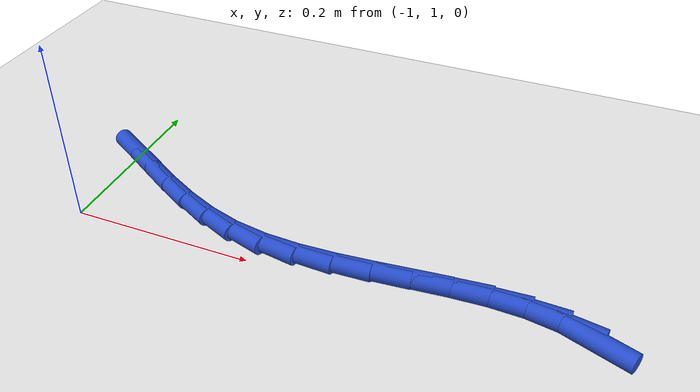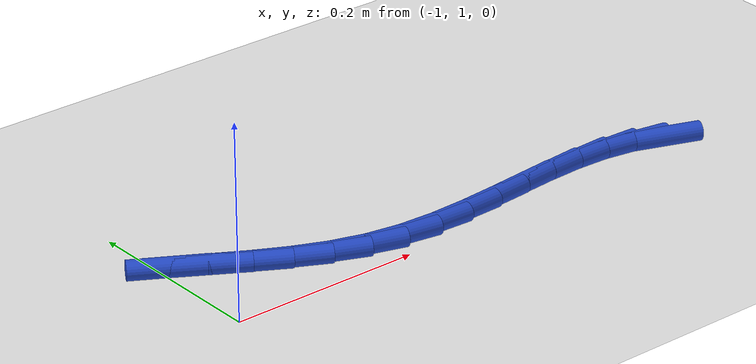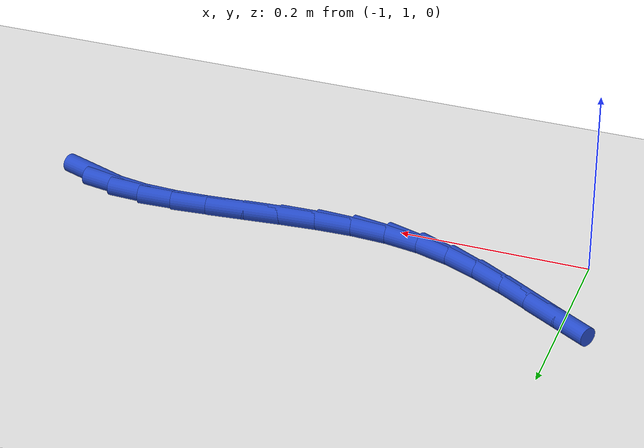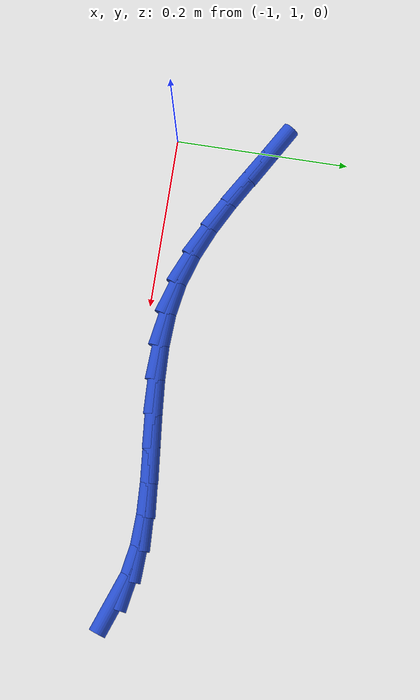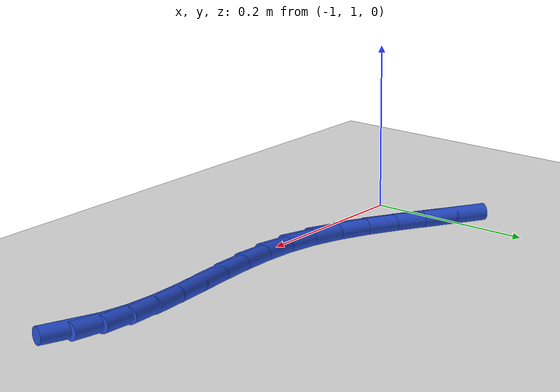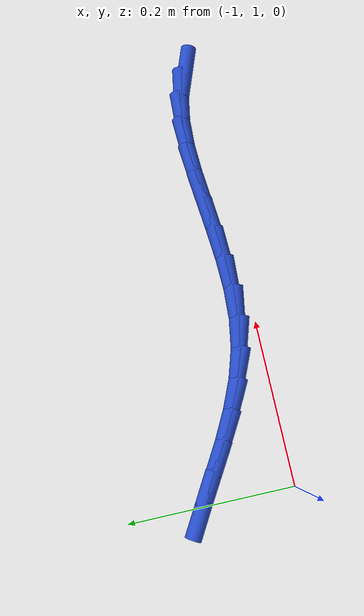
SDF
<sdf version="1.6">
 <world name="default">
  <model name="ground_plane">
   <static>1</static>
   <link name="link">
    <collision name="collision">
     <geometry><plane><normal>0 0 1</normal><size>100 100</size></plane></geometry>
     <surface><friction><ode><mu>100</mu><mu2>50</mu2></ode></friction></surface>
    </collision>
    <visual name="visual">
     <cast_shadows>0</cast_shadows>
     <geometry><plane><normal>0 0 1</normal><size>100 100</size></plane></geometry>
     <material>
      <script><uri>file://media/materials/scripts/gazebo.material</uri><name>Gazebo/WhiteGlow</name></script>
     </material>
    </visual>
   </link>
  </model>
  <model name="line">
   <link name="link_31">
    <pose>-0.46325915484791785 1.0159132641402708 0.01 0 1.57 -0.3467041414615082</pose>
    <collision name="collision">
     <geometry><cylinder><radius>0.01</radius><length>0.08</length></cylinder></geometry>
    </collision>
    <visual name="visual">
     <material>
      <script><name>Gazebo/Blue</name><uri>file://media/materials/scripts/gazebo.material</uri></script>
     </material>
     <geometry><cylinder><radius>0.01</radius><length>0.08</length></cylinder></geometry>
    </visual>
   </link>
   <link name="link_32">
    <pose>-0.4933473817771319 1.0267840788976763 0.01 0 1.57 -0.16493458311249</pose>
    <collision name="collision">
     <geometry><cylinder><radius>0.01</radius><length>0.08</length></cylinder></geometry>
    </collision>
    <visual name="visual">
     <material>
      <script><name>Gazebo/Blue</name><uri>file://media/materials/scripts/gazebo.material</uri></script>
     </material>
     <geometry><cylinder><radius>0.01</radius><length>0.08</length></cylinder></geometry>
    </visual>
   </link>
   <link name="link_33">
    <pose>-0.5262276851728339 1.0322568946947934 0.01 0 1.57 -0.03674275675983046</pose>
    <collision name="collision">
     <geometry><cylinder><radius>0.01</radius><length>0.08</length></cylinder></geometry>
    </collision>
    <visual name="visual">
     <material>
      <script><name>Gazebo/Blue</name><uri>file://media/materials/scripts/gazebo.material</uri></script>
     </material>
     <geometry><cylinder><radius>0.01</radius><length>0.08</length></cylinder></geometry>
    </visual>
   </link>
   <link name="link_34">
    <pose>-0.5613947386432436 1.0335496109741087 0.01 0 1.57 0.045153391238537684</pose>
    <collision name="collision">
     <geometry><cylinder><radius>0.01</radius><length>0.08</length></cylinder></geometry>
    </collision>
    <visual name="visual">
     <material>
      <script><name>Gazebo/Blue</name><uri>file://media/materials/scripts/gazebo.material</uri></script>
     </material>
     <geometry><cylinder><radius>0.01</radius><length>0.08</length></cylinder></geometry>
    </visual>
   </link>
   <link name="link_35">
    <pose>-0.5983432157965802 1.0318801271781077 0.01 0 1.57 0.08907231843675277</pose>
    <collision name="collision">
     <geometry><cylinder><radius>0.01</radius><length>0.08</length></cylinder></geometry>
    </collision>
    <visual name="visual">
     <material>
      <script><name>Gazebo/Blue</name><uri>file://media/materials/scripts/gazebo.material</uri></script>
     </material>
     <geometry><cylinder><radius>0.01</radius><length>0.08</length></cylinder></geometry>
    </visual>
   </link>
   <link name="link_36">
    <pose>-0.6365677902410642 1.0284663427492764 0.01 0 1.57 0.1007006841445614</pose>
    <collision name="collision">
     <geometry><cylinder><radius>0.01</radius><length>0.08</length></cylinder></geometry>
    </collision>
    <visual name="visual">
     <material>
      <script><name>Gazebo/Blue</name><uri>file://media/materials/scripts/gazebo.material</uri></script>
     </material>
     <geometry><cylinder><radius>0.01</radius><length>0.08</length></cylinder></geometry>
    </visual>
   </link>
   <link name="link_37">
    <pose>-0.6755631355849148 1.024526157130101 0.01 0 1.57 0.08255827627250076</pose>
    <collision name="collision">
     <geometry><cylinder><radius>0.01</radius><length>0.08</length></cylinder></geometry>
    </collision>
    <visual name="visual">
     <material>
      <script><name>Gazebo/Blue</name><uri>file://media/materials/scripts/gazebo.material</uri></script>
     </material>
     <geometry><cylinder><radius>0.01</radius><length>0.08</length></cylinder></geometry>
    </visual>
   </link>
   <link name="link_38">
    <pose>-0.7148239254363519 1.0212774697630673 0.01 0 1.57 0.03430889254589658</pose>
    <collision name="collision">
     <geometry><cylinder><radius>0.01</radius><length>0.08</length></cylinder></geometry>
    </collision>
    <visual name="visual">
     <material>
      <script><name>Gazebo/Blue</name><uri>file://media/materials/scripts/gazebo.material</uri></script>
     </material>
     <geometry><cylinder><radius>0.01</radius><length>0.08</length></cylinder></geometry>
    </visual>
   </link>
   <link name="link_39">
    <pose>-0.7538448334035953 1.0199381800906615 0.01 0 1.57 -0.04667997160673434</pose>
    <collision name="collision">
     <geometry><cylinder><radius>0.01</radius><length>0.08</length></cylinder></geometry>
    </collision>
    <visual name="visual">
     <material>
      <script><name>Gazebo/Blue</name><uri>file://media/materials/scripts/gazebo.material</uri></script>
     </material>
     <geometry><cylinder><radius>0.01</radius><length>0.08</length></cylinder></geometry>
    </visual>
   </link>
   <link name="link_40">
    <pose>-0.7921205330948645 1.0217261875553691 0.01 0 1.57 -0.1639612248776783</pose>
    <collision name="collision">
     <geometry><cylinder><radius>0.01</radius><length>0.08</length></cylinder></geometry>
    </collision>
    <visual name="visual">
     <material>
      <script><name>Gazebo/Blue</name><uri>file://media/materials/scripts/gazebo.material</uri></script>
     </material>
     <geometry><cylinder><radius>0.01</radius><length>0.08</length></cylinder></geometry>
    </visual>
   </link>
   <link name="link_41">
    <pose>-0.8291480905089952 1.027852266231556 0.01 0 1.57 -0.29802096231443126</pose>
    <collision name="collision">
     <geometry><cylinder><radius>0.01</radius><length>0.08</length></cylinder></geometry>
    </collision>
    <visual name="visual">
     <material>
      <script><name>Gazebo/Blue</name><uri>file://media/materials/scripts/gazebo.material</uri></script>
     </material>
     <geometry><cylinder><radius>0.01</radius><length>0.08</length></cylinder></geometry>
    </visual>
   </link>
   <link name="link_42">
    <pose>-0.8646799582709335 1.038766560339869 0.01 0 1.57 -0.4059049006916097</pose>
    <collision name="collision">
     <geometry><cylinder><radius>0.01</radius><length>0.08</length></cylinder></geometry>
    </collision>
    <visual name="visual">
     <material>
      <script><name>Gazebo/Blue</name><uri>file://media/materials/scripts/gazebo.material</uri></script>
     </material>
     <geometry><cylinder><radius>0.01</radius><length>0.08</length></cylinder></geometry>
    </visual>
   </link>
   <link name="link_43">
    <pose>-0.8989472330487357 1.0534936463097262 0.01 0 1.57 -0.4818508658149781</pose>
    <collision name="collision">
     <geometry><cylinder><radius>0.01</radius><length>0.08</length></cylinder></geometry>
    </collision>
    <visual name="visual">
     <material>
      <script><name>Gazebo/Blue</name><uri>file://media/materials/scripts/gazebo.material</uri></script>
     </material>
     <geometry><cylinder><radius>0.01</radius><length>0.08</length></cylinder></geometry>
    </visual>
   </link>
   <link name="link_44">
    <pose>-0.9322336575721422 1.070901302359117 0.01 0 1.57 -0.5268273854434528</pose>
    <collision name="collision">
     <geometry><cylinder><radius>0.01</radius><length>0.08</length></cylinder></geometry>
    </collision>
    <visual name="visual">
     <material>
      <script><name>Gazebo/Blue</name><uri>file://media/materials/scripts/gazebo.material</uri></script>
     </material>
     <geometry><cylinder><radius>0.01</radius><length>0.08</length></cylinder></geometry>
    </visual>
   </link>
   <link name="link_45">
    <pose>-0.9648229745708924 1.0898573067060315 0.01 0 1.57 -0.5419391499948902</pose>
    <collision name="collision">
     <geometry><cylinder><radius>0.01</radius><length>0.08</length></cylinder></geometry>
    </collision>
    <visual name="visual">
     <material>
      <script><name>Gazebo/Blue</name><uri>file://media/materials/scripts/gazebo.material</uri></script>
     </material>
     <geometry><cylinder><radius>0.01</radius><length>0.08</length></cylinder></geometry>
    </visual>
   </link>
   <link name="link_46">
    <pose>-0.9969989267747262 1.1092294375684584 0.01 0 1.57 -0.5271972567870595</pose>
    <collision name="collision">
     <geometry><cylinder><radius>0.01</radius><length>0.08</length></cylinder></geometry>
    </collision>
    <visual name="visual">
     <material>
      <script><name>Gazebo/Blue</name><uri>file://media/materials/scripts/gazebo.material</uri></script>
     </material>
     <geometry><cylinder><radius>0.01</radius><length>0.08</length></cylinder></geometry>
    </visual>
   </link>
  </model>
 </world>
</sdf>
